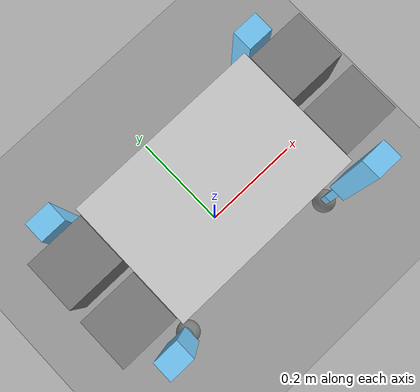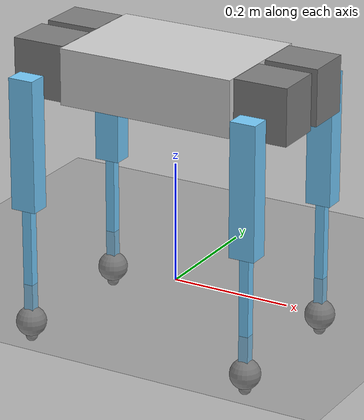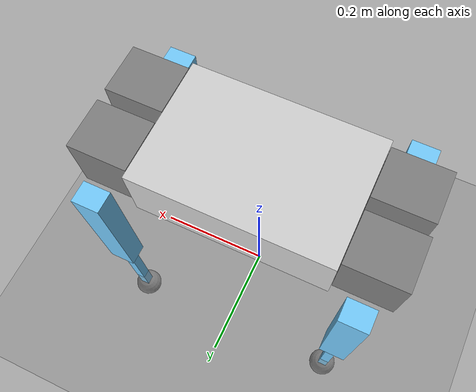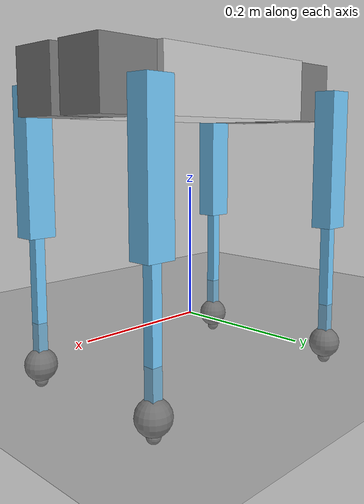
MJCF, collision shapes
<?xml version="1.0" encoding="utf-8"?>
<!--
  MIT Mini Cheetah MuJoCo model
  Converted from URDF: https://github.com/sevocrear/Mini-Cheetah-ROS
  Meshes from: cheetah_description/meshes/
  Kinematics and inertia from the original URDF.
-->
<mujoco model="mini_cheetah">
  <compiler angle="radian" autolimits="true" meshdir="meshes"/>
  <option timestep="0.002" gravity="0 0 -9.81" iterations="50" solver="Newton" cone="elliptic"/>

  <visual>
    <headlight ambient="0.5 0.5 0.5" diffuse="0.8 0.8 0.8" specular="0.1 0.1 0.1"/>
    <map force="0.1" zfar="30"/>
    <quality shadowsize="2048"/>
  </visual>

  <asset>
    <texture type="skybox" builtin="gradient" rgb1="0.4 0.6 0.8" rgb2="0.05 0.05 0.2" width="100" height="100"/>
    <texture name="floor_tex" type="2d" builtin="checker" rgb1="0.6 0.6 0.6" rgb2="0.4 0.4 0.4" width="300" height="300"/>
    <material name="floor_mat" texture="floor_tex" texrepeat="10 10" specular="0.5" shininess="0.3" reflectance="0.1"/>
    <material name="body_mat" rgba="0.82 0.82 0.82 1" specular="0.5" shininess="0.8"/>
    <material name="hip_mat" rgba="0.81 0.68 0.30 1" specular="0.3" shininess="0.5"/>
    <material name="leg_mat" rgba="0.46 0.80 0.99 1" specular="0.3" shininess="0.5"/>
    <material name="foot_mat" rgba="0.49 0.49 0.49 1" specular="0.2" shininess="0.3"/>

    <!-- STL meshes from the Mini-Cheetah-ROS URDF -->
    <mesh name="trunk_mesh" file="trunk.STL"/>
    <mesh name="hip_mesh" file="hip.STL"/>
    <mesh name="thigh_mesh" file="thigh.STL"/>
    <mesh name="calf_mesh" file="calf.STL"/>
    <mesh name="foot_mesh" file="foot.STL"/>
  </asset>

  <default>
    <joint limited="true" armature="0.01" damping="0.5"/>
    <geom condim="6" friction="0.8 0.02 0.01" margin="0.001"/>
    <motor ctrllimited="true" ctrlrange="-20.0 20.0"/>
  </default>

  <worldbody>
    <light name="top" pos="0 0 3" dir="0 0 -1" directional="true" diffuse="0.8 0.8 0.8" specular="0.2 0.2 0.2"/>
    <light name="front" pos="2 -2 2" dir="-1 1 -1" diffuse="0.3 0.3 0.3"/>
    <geom name="floor" type="plane" size="50 50 0.1" material="floor_mat" condim="6" friction="1.0 0.005 0.0001"/>

    <!-- ═══ Base (trunk) ═══ -->
    <body name="base" pos="0 0 0.35">
      <freejoint name="root"/>
      <inertial pos="0 0 0" mass="3.3" diaginertia="0.011253 0.036203 0.042673"/>
      <geom name="trunk_visual" type="mesh" mesh="trunk_mesh" material="body_mat" contype="0" conaffinity="0"/>
      <geom name="trunk_collision" type="box" size="0.15 0.1 0.0465" material="body_mat" contype="0" conaffinity="0"/>
      <site name="imu_site" pos="0 0 0" size="0.01"/>

      <!-- ═══ FR (Front-Right) leg ═══ -->
      <body name="FR_hip" pos="0.196 -0.049664 0">
        <inertial pos="0 0.036 0" quat="0.707107 0 0 0.707107" mass="0.57" diaginertia="0.000795577 0.000714827 0.00068875"/>
        <joint name="FR_hip_joint" axis="1 0 0" range="-1.0472 0.872665" damping="0.5" armature="0.01"/>
        <geom name="FR_hip_visual" type="mesh" mesh="hip_mesh" material="hip_mat" euler="0 3.14159 0" contype="0" conaffinity="0"/>
        <geom name="FR_hip_collision" type="box" size="0.045 0.04 0.0465" contype="0" conaffinity="0"/>
        <body name="FR_thigh" pos="0 -0.077476 0">
          <inertial pos="0 0.016 -0.11" quat="0.707107 0 0 0.707107" mass="0.634" diaginertia="0.00265482 0.00261821 0.000158764"/>
          <joint name="FR_thigh_joint" axis="0 1 0" range="-0.523599 3.92699" damping="0.5" armature="0.01"/>
          <geom name="FR_thigh_visual" type="mesh" mesh="thigh_mesh" material="leg_mat" contype="0" conaffinity="0"/>
          <geom name="FR_thigh_collision" type="box" size="0.0215 0.017 0.11" pos="0 0 -0.11" material="leg_mat" contype="0" conaffinity="0"/>
          <body name="FR_calf" pos="0 0 -0.2115">
            <inertial pos="0 0 -0.161488" mass="0.214" diaginertia="0.00263797 0.00263797 4.48657e-05"/>
            <joint name="FR_calf_joint" axis="0 1 0" range="-3.14159 3.14159" damping="0.5" armature="0.01"/>
            <geom name="FR_calf_visual" type="mesh" mesh="calf_mesh" pos="0 0.009 0" material="leg_mat" contype="0" conaffinity="0"/>
            <geom name="FR_calf_collision" type="box" size="0.008 0.008 0.1" pos="0 0 -0.1" material="leg_mat" contype="0" conaffinity="0"/>
            <body name="FR_foot" pos="0 0 -0.23039">
              <inertial pos="0 0 0" mass="0.15" diaginertia="4.2135e-05 4.2135e-05 4.2135e-05"/>
              <geom name="FR_foot_visual" type="mesh" mesh="foot_mesh" pos="0 0.018 0.02" material="foot_mat" contype="0" conaffinity="0"/>
              <geom name="FR_foot_collision" type="sphere" size="0.025" pos="0 0 0.025" material="foot_mat" condim="6" friction="1.5 0.005 0.0001" solimp="0.9 0.95 0.001" solref="0.02 1"/>
              <site name="FR_foot_site" pos="0 0 0" size="0.01"/>
            </body>
          </body>
        </body>
      </body>

      <!-- ═══ FL (Front-Left) leg ═══ -->
      <body name="FL_hip" pos="0.196 0.049664 0">
        <inertial pos="0 -0.036 0" quat="0.707107 0 0 0.707107" mass="0.57" diaginertia="0.000795577 0.000714827 0.00068875"/>
        <joint name="FL_hip_joint" axis="1 0 0" range="-0.872665 1.0472" damping="0.5" armature="0.01"/>
        <geom name="FL_hip_visual" type="mesh" mesh="hip_mesh" material="hip_mat" euler="3.14159 3.14159 0" contype="0" conaffinity="0"/>
        <geom name="FL_hip_collision" type="box" size="0.045 0.04 0.0465" contype="0" conaffinity="0"/>
        <body name="FL_thigh" pos="0 0.077476 0">
          <inertial pos="0 -0.016 -0.11" quat="0.707107 0 0 0.707107" mass="0.634" diaginertia="0.00265482 0.00261821 0.000158764"/>
          <joint name="FL_thigh_joint" axis="0 1 0" range="-0.523599 3.92699" damping="0.5" armature="0.01"/>
          <geom name="FL_thigh_visual" type="mesh" mesh="thigh_mesh" material="leg_mat" euler="3.14159 3.14159 0" contype="0" conaffinity="0"/>
          <geom name="FL_thigh_collision" type="box" size="0.0215 0.017 0.11" pos="0 0 -0.11" material="leg_mat" contype="0" conaffinity="0"/>
          <body name="FL_calf" pos="0 0 -0.2115">
            <inertial pos="0 0 -0.161488" mass="0.214" diaginertia="0.00263797 0.00263797 4.48657e-05"/>
            <joint name="FL_calf_joint" axis="0 1 0" range="-3.14159 3.14159" damping="0.5" armature="0.01"/>
            <geom name="FL_calf_visual" type="mesh" mesh="calf_mesh" pos="0 0.009 0" material="leg_mat" contype="0" conaffinity="0"/>
            <geom name="FL_calf_collision" type="box" size="0.008 0.008 0.1" pos="0 0 -0.1" material="leg_mat" contype="0" conaffinity="0"/>
            <body name="FL_foot" pos="0 0 -0.23039">
              <inertial pos="0 0 0" mass="0.15" diaginertia="4.2135e-05 4.2135e-05 4.2135e-05"/>
              <geom name="FL_foot_visual" type="mesh" mesh="foot_mesh" pos="0 0.018 0.02" material="foot_mat" contype="0" conaffinity="0"/>
              <geom name="FL_foot_collision" type="sphere" size="0.025" pos="0 0 0.025" material="foot_mat" condim="6" friction="1.5 0.005 0.0001" solimp="0.9 0.95 0.001" solref="0.02 1"/>
              <site name="FL_foot_site" pos="0 0 0" size="0.01"/>
            </body>
          </body>
        </body>
      </body>

      <!-- ═══ RR (Rear-Right) leg ═══ -->
      <body name="RR_hip" pos="-0.196 -0.049664 0">
        <inertial pos="0 0.036 0" quat="0.707107 0 0 0.707107" mass="0.57" diaginertia="0.000795577 0.000714827 0.00068875"/>
        <joint name="RR_hip_joint" axis="1 0 0" range="-1.0472 0.872665" damping="0.5" armature="0.01"/>
        <geom name="RR_hip_visual" type="mesh" mesh="hip_mesh" material="hip_mat" contype="0" conaffinity="0"/>
        <geom name="RR_hip_collision" type="box" size="0.045 0.04 0.0465" contype="0" conaffinity="0"/>
        <body name="RR_thigh" pos="0 -0.077476 0">
          <inertial pos="0 0.016 -0.11" quat="0.707107 0 0 0.707107" mass="0.634" diaginertia="0.00265482 0.00261821 0.000158764"/>
          <joint name="RR_thigh_joint" axis="0 1 0" range="-0.523599 3.92699" damping="0.5" armature="0.01"/>
          <geom name="RR_thigh_visual" type="mesh" mesh="thigh_mesh" material="leg_mat" contype="0" conaffinity="0"/>
          <geom name="RR_thigh_collision" type="box" size="0.0215 0.017 0.11" pos="0 0 -0.11" material="leg_mat" contype="0" conaffinity="0"/>
          <body name="RR_calf" pos="0 0 -0.2115">
            <inertial pos="0 0 -0.161488" mass="0.214" diaginertia="0.00263797 0.00263797 4.48657e-05"/>
            <joint name="RR_calf_joint" axis="0 1 0" range="-3.14159 3.14159" damping="0.5" armature="0.01"/>
            <geom name="RR_calf_visual" type="mesh" mesh="calf_mesh" pos="0 0.009 0" material="leg_mat" contype="0" conaffinity="0"/>
            <geom name="RR_calf_collision" type="box" size="0.008 0.008 0.1" pos="0 0 -0.1" material="leg_mat" contype="0" conaffinity="0"/>
            <body name="RR_foot" pos="0 0 -0.23039">
              <inertial pos="0 0 0" mass="0.15" diaginertia="4.2135e-05 4.2135e-05 4.2135e-05"/>
              <geom name="RR_foot_visual" type="mesh" mesh="foot_mesh" pos="0 0.018 0.02" material="foot_mat" contype="0" conaffinity="0"/>
              <geom name="RR_foot_collision" type="sphere" size="0.025" pos="0 0 0.025" material="foot_mat" condim="6" friction="1.5 0.005 0.0001" solimp="0.9 0.95 0.001" solref="0.02 1"/>
              <site name="RR_foot_site" pos="0 0 0" size="0.01"/>
            </body>
          </body>
        </body>
      </body>

      <!-- ═══ RL (Rear-Left) leg ═══ -->
      <body name="RL_hip" pos="-0.196 0.049664 0">
        <inertial pos="0 -0.036 0" quat="0.707107 0 0 0.707107" mass="0.57" diaginertia="0.000795577 0.000714827 0.00068875"/>
        <joint name="RL_hip_joint" axis="1 0 0" range="-0.872665 1.0472" damping="0.5" armature="0.01"/>
        <geom name="RL_hip_visual" type="mesh" mesh="hip_mesh" material="hip_mat" euler="3.14159 0 0" contype="0" conaffinity="0"/>
        <geom name="RL_hip_collision" type="box" size="0.045 0.04 0.0465" contype="0" conaffinity="0"/>
        <body name="RL_thigh" pos="0 0.077476 0">
          <inertial pos="0 -0.016 -0.11" quat="0.707107 0 0 0.707107" mass="0.634" diaginertia="0.00265482 0.00261821 0.000158764"/>
          <joint name="RL_thigh_joint" axis="0 1 0" range="-0.523599 3.92699" damping="0.5" armature="0.01"/>
          <geom name="RL_thigh_visual" type="mesh" mesh="thigh_mesh" material="leg_mat" euler="3.14159 3.14159 0" contype="0" conaffinity="0"/>
          <geom name="RL_thigh_collision" type="box" size="0.0215 0.017 0.11" pos="0 0 -0.11" material="leg_mat" contype="0" conaffinity="0"/>
          <body name="RL_calf" pos="0 0 -0.2115">
            <inertial pos="0 0 -0.161488" mass="0.214" diaginertia="0.00263797 0.00263797 4.48657e-05"/>
            <joint name="RL_calf_joint" axis="0 1 0" range="-3.14159 3.14159" damping="0.5" armature="0.01"/>
            <geom name="RL_calf_visual" type="mesh" mesh="calf_mesh" pos="0 0.009 0" material="leg_mat" contype="0" conaffinity="0"/>
            <geom name="RL_calf_collision" type="box" size="0.008 0.008 0.1" pos="0 0 -0.1" material="leg_mat" contype="0" conaffinity="0"/>
            <body name="RL_foot" pos="0 0 -0.23039">
              <inertial pos="0 0 0" mass="0.15" diaginertia="4.2135e-05 4.2135e-05 4.2135e-05"/>
              <geom name="RL_foot_visual" type="mesh" mesh="foot_mesh" pos="0 0.018 0.02" material="foot_mat" contype="0" conaffinity="0"/>
              <geom name="RL_foot_collision" type="sphere" size="0.025" pos="0 0 0.025" material="foot_mat" condim="6" friction="1.5 0.005 0.0001" solimp="0.9 0.95 0.001" solref="0.02 1"/>
              <site name="RL_foot_site" pos="0 0 0" size="0.01"/>
            </body>
          </body>
        </body>
      </body>

    </body>
  </worldbody>

  <!-- Actuators: one motor per joint, order FR/FL/RR/RL × hip/thigh/calf -->
  <actuator>
    <motor name="FR_hip_motor"   joint="FR_hip_joint"   gear="1"/>
    <motor name="FR_thigh_motor" joint="FR_thigh_joint" gear="1"/>
    <motor name="FR_calf_motor"  joint="FR_calf_joint"  gear="1"/>
    <motor name="FL_hip_motor"   joint="FL_hip_joint"   gear="1"/>
    <motor name="FL_thigh_motor" joint="FL_thigh_joint" gear="1"/>
    <motor name="FL_calf_motor"  joint="FL_calf_joint"  gear="1"/>
    <motor name="RR_hip_motor"   joint="RR_hip_joint"   gear="1"/>
    <motor name="RR_thigh_motor" joint="RR_thigh_joint" gear="1"/>
    <motor name="RR_calf_motor"  joint="RR_calf_joint"  gear="1"/>
    <motor name="RL_hip_motor"   joint="RL_hip_joint"   gear="1"/>
    <motor name="RL_thigh_motor" joint="RL_thigh_joint" gear="1"/>
    <motor name="RL_calf_motor"  joint="RL_calf_joint"  gear="1"/>
  </actuator>

  <sensor>
    <framelinvel name="base_linvel" objtype="site" objname="imu_site"/>
    <frameangvel name="base_angvel" objtype="site" objname="imu_site"/>
    <framequat name="base_quat" objtype="site" objname="imu_site"/>
    <accelerometer name="base_accel" site="imu_site"/>
    <gyro name="base_gyro" site="imu_site"/>
  </sensor>
</mujoco>
